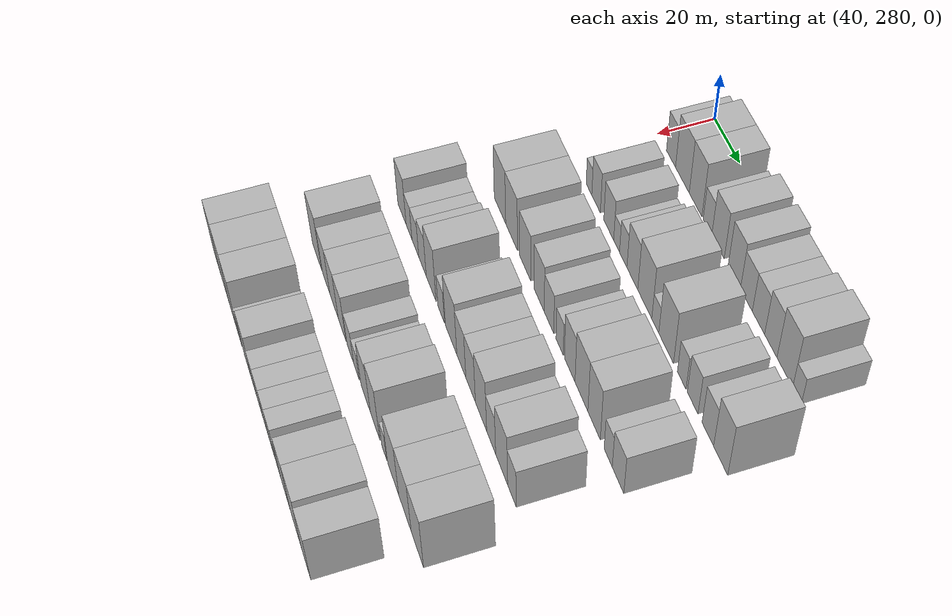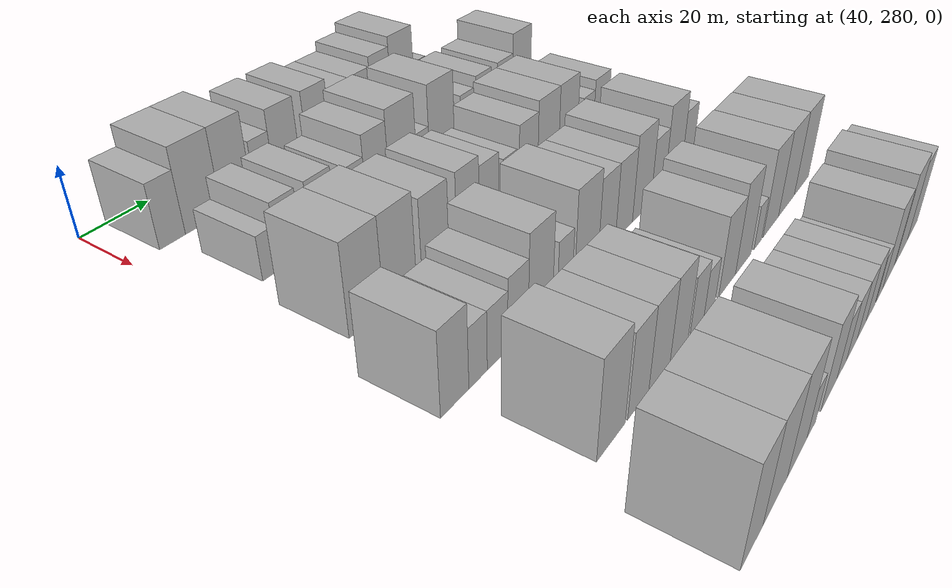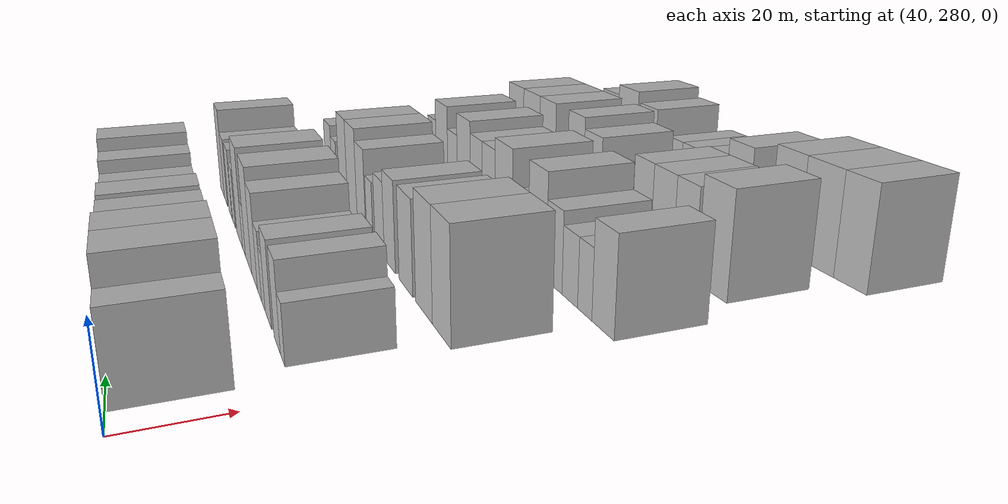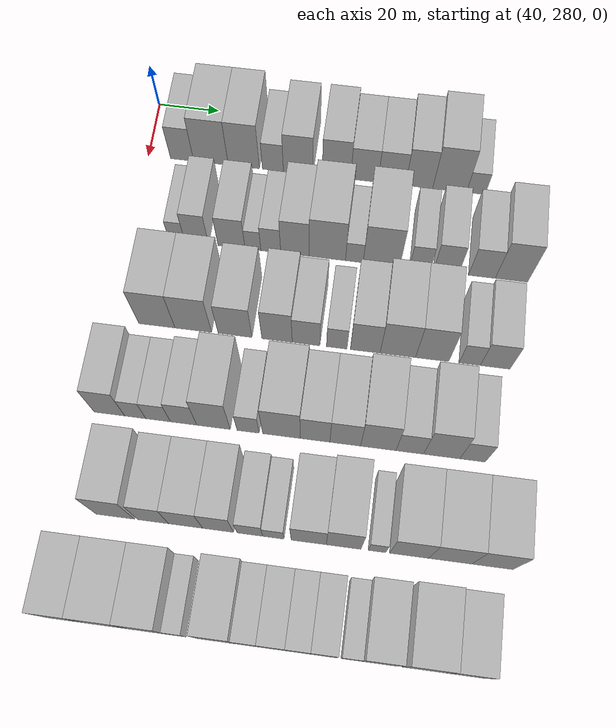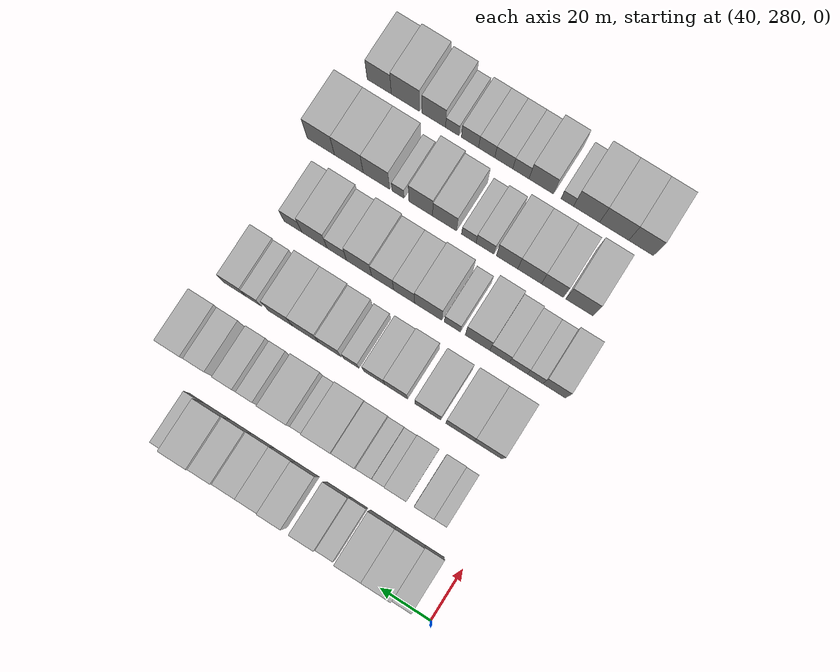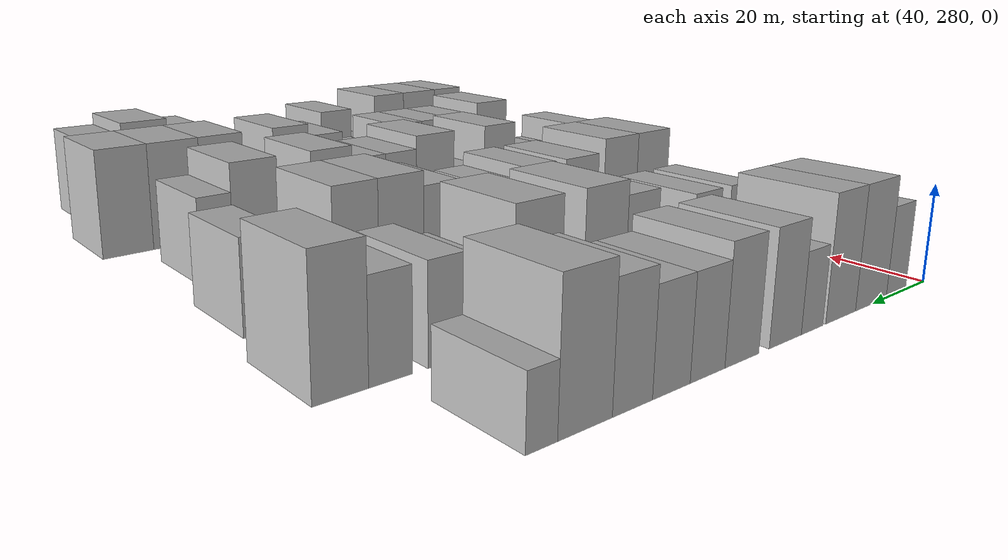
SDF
<sdf version="1.6">
 <world name="default">
  <model name="building_75">
   <static>1</static>
   <pose>50.0000 291.2362 0 0.000000 0.000000 0.000000</pose>
   <link name="link">
    <pose>0 0 9.00 0 0 0</pose>
    <collision name="collision"><geometry><box><size>20.0000 7.6093 18.0000</size></box></geometry></collision>
    <visual name="visual">
     <cast_shadows>0</cast_shadows>
     <geometry><box><size>20.0000 7.6093 18.0000</size></box></geometry>
     <material>
      <script>
       <uri>model://HANNAS_wall/materials/scripts</uri>
       <uri>model://HANNAS_wall/materials/textures</uri>
       <name>vrc/HANNAS_wall</name>
      </script>
     </material>
    </visual>
   </link>
  </model>
  <model name="building_76">
   <static>1</static>
   <pose>50.0000 300.7104 0 0.000000 0.000000 0.000000</pose>
   <link name="link">
    <pose>0 0 12.00 0 0 0</pose>
    <collision name="collision"><geometry><box><size>20.0000 11.3392 24.0000</size></box></geometry></collision>
    <visual name="visual">
     <cast_shadows>0</cast_shadows>
     <geometry><box><size>20.0000 11.3392 24.0000</size></box></geometry>
     <material>
      <script>
       <uri>model://HANNAS_wall/materials/scripts</uri>
       <uri>model://HANNAS_wall/materials/textures</uri>
       <name>vrc/HANNAS_wall</name>
      </script>
     </material>
    </visual>
   </link>
  </model>
  <model name="building_77">
   <static>1</static>
   <pose>50.0000 311.4844 0 0.000000 0.000000 0.000000</pose>
   <link name="link">
    <pose>0 0 12.00 0 0 0</pose>
    <collision name="collision"><geometry><box><size>20.0000 10.2089 24.0000</size></box></geometry></collision>
    <visual name="visual">
     <cast_shadows>0</cast_shadows>
     <geometry><box><size>20.0000 10.2089 24.0000</size></box></geometry>
     <material>
      <script>
       <uri>model://HANNAS_wall/materials/scripts</uri>
       <uri>model://HANNAS_wall/materials/textures</uri>
       <name>vrc/HANNAS_wall</name>
      </script>
     </material>
    </visual>
   </link>
  </model>
  <model name="building_78">
   <static>1</static>
   <pose>50.0000 321.0028 0 0.000000 0.000000 0.000000</pose>
   <link name="link">
    <pose>0 0 7.50 0 0 0</pose>
    <collision name="collision"><geometry><box><size>20.0000 6.8279 15.0000</size></box></geometry></collision>
    <visual name="visual">
     <cast_shadows>0</cast_shadows>
     <geometry><box><size>20.0000 6.8279 15.0000</size></box></geometry>
     <material>
      <script>
       <uri>model://HANNAS_wall/materials/scripts</uri>
       <uri>model://HANNAS_wall/materials/textures</uri>
       <name>vrc/HANNAS_wall</name>
      </script>
     </material>
    </visual>
   </link>
  </model>
  <model name="building_79">
   <static>1</static>
   <pose>50.0000 329.2304 0 0.000000 0.000000 0.000000</pose>
   <link name="link">
    <pose>0 0 10.50 0 0 0</pose>
    <collision name="collision"><geometry><box><size>20.0000 9.6273 21.0000</size></box></geometry></collision>
    <visual name="visual">
     <cast_shadows>0</cast_shadows>
     <geometry><box><size>20.0000 9.6273 21.0000</size></box></geometry>
     <material>
      <script>
       <uri>model://HANNAS_wall/materials/scripts</uri>
       <uri>model://HANNAS_wall/materials/textures</uri>
       <name>vrc/HANNAS_wall</name>
      </script>
     </material>
    </visual>
   </link>
  </model>
  <model name="building_80">
   <static>1</static>
   <pose>50.0000 341.6687 0 0.000000 0.000000 0.000000</pose>
   <link name="link">
    <pose>0 0 10.50 0 0 0</pose>
    <collision name="collision"><geometry><box><size>20.0000 9.2493 21.0000</size></box></geometry></collision>
    <visual name="visual">
     <cast_shadows>0</cast_shadows>
     <geometry><box><size>20.0000 9.2493 21.0000</size></box></geometry>
     <material>
      <script>
       <uri>model://HANNAS_wall/materials/scripts</uri>
       <uri>model://HANNAS_wall/materials/textures</uri>
       <name>vrc/HANNAS_wall</name>
      </script>
     </material>
    </visual>
   </link>
  </model>
  <model name="building_81">
   <static>1</static>
   <pose>50.0000 350.6972 0 0.000000 0.000000 0.000000</pose>
   <link name="link">
    <pose>0 0 9.00 0 0 0</pose>
    <collision name="collision"><geometry><box><size>20.0000 8.8076 18.0000</size></box></geometry></collision>
    <visual name="visual">
     <cast_shadows>0</cast_shadows>
     <geometry><box><size>20.0000 8.8076 18.0000</size></box></geometry>
     <material>
      <script>
       <uri>model://HANNAS_wall/materials/scripts</uri>
       <uri>model://HANNAS_wall/materials/textures</uri>
       <name>vrc/HANNAS_wall</name>
      </script>
     </material>
    </visual>
   </link>
  </model>
  <model name="building_82">
   <static>1</static>
   <pose>50.0000 359.5367 0 0.000000 0.000000 0.000000</pose>
   <link name="link">
    <pose>0 0 9.00 0 0 0</pose>
    <collision name="collision"><geometry><box><size>20.0000 8.8714 18.0000</size></box></geometry></collision>
    <visual name="visual">
     <cast_shadows>0</cast_shadows>
     <geometry><box><size>20.0000 8.8714 18.0000</size></box></geometry>
     <material>
      <script>
       <uri>model://HANNAS_wall/materials/scripts</uri>
       <uri>model://HANNAS_wall/materials/textures</uri>
       <name>vrc/HANNAS_wall</name>
      </script>
     </material>
    </visual>
   </link>
  </model>
  <model name="building_83">
   <static>1</static>
   <pose>50.0000 368.3480 0 0.000000 0.000000 0.000000</pose>
   <link name="link">
    <pose>0 0 10.50 0 0 0</pose>
    <collision name="collision"><geometry><box><size>20.0000 8.7513 21.0000</size></box></geometry></collision>
    <visual name="visual">
     <cast_shadows>0</cast_shadows>
     <geometry><box><size>20.0000 8.7513 21.0000</size></box></geometry>
     <material>
      <script>
       <uri>model://HANNAS_wall/materials/scripts</uri>
       <uri>model://HANNAS_wall/materials/textures</uri>
       <name>vrc/HANNAS_wall</name>
      </script>
     </material>
    </visual>
   </link>
  </model>
  <model name="building_84">
   <static>1</static>
   <pose>50.0000 378.1761 0 0.000000 0.000000 0.000000</pose>
   <link name="link">
    <pose>0 0 12.00 0 0 0</pose>
    <collision name="collision"><geometry><box><size>20.0000 10.9050 24.0000</size></box></geometry></collision>
    <visual name="visual">
     <cast_shadows>0</cast_shadows>
     <geometry><box><size>20.0000 10.9050 24.0000</size></box></geometry>
     <material>
      <script>
       <uri>model://HANNAS_wall/materials/scripts</uri>
       <uri>model://HANNAS_wall/materials/textures</uri>
       <name>vrc/HANNAS_wall</name>
      </script>
     </material>
    </visual>
   </link>
  </model>
  <model name="building_85">
   <static>1</static>
   <pose>50.0000 386.6057 0 0.000000 0.000000 0.000000</pose>
   <link name="link">
    <pose>0 0 6.00 0 0 0</pose>
    <collision name="collision"><geometry><box><size>20.0000 5.9542 12.0000</size></box></geometry></collision>
    <visual name="visual">
     <cast_shadows>0</cast_shadows>
     <geometry><box><size>20.0000 5.9542 12.0000</size></box></geometry>
     <material>
      <script>
       <uri>model://HANNAS_wall/materials/scripts</uri>
       <uri>model://HANNAS_wall/materials/textures</uri>
       <name>vrc/HANNAS_wall</name>
      </script>
     </material>
    </visual>
   </link>
  </model>
  <model name="building_186">
   <static>1</static>
   <pose>79.0000 294.8105 0 0.000000 0.000000 0.000000</pose>
   <link name="link">
    <pose>0 0 6.00 0 0 0</pose>
    <collision name="collision"><geometry><box><size>20.0000 5.0471 12.0000</size></box></geometry></collision>
    <visual name="visual">
     <cast_shadows>0</cast_shadows>
     <geometry><box><size>20.0000 5.0471 12.0000</size></box></geometry>
     <material>
      <script>
       <uri>model://HANNAS_wall/materials/scripts</uri>
       <uri>model://HANNAS_wall/materials/textures</uri>
       <name>vrc/HANNAS_wall</name>
      </script>
     </material>
    </visual>
   </link>
  </model>
  <model name="building_187">
   <static>1</static>
   <pose>79.0000 301.1173 0 0.000000 0.000000 0.000000</pose>
   <link name="link">
    <pose>0 0 9.00 0 0 0</pose>
    <collision name="collision"><geometry><box><size>20.0000 7.5666 18.0000</size></box></geometry></collision>
    <visual name="visual">
     <cast_shadows>0</cast_shadows>
     <geometry><box><size>20.0000 7.5666 18.0000</size></box></geometry>
     <material>
      <script>
       <uri>model://HANNAS_wall/materials/scripts</uri>
       <uri>model://HANNAS_wall/materials/textures</uri>
       <name>vrc/HANNAS_wall</name>
      </script>
     </material>
    </visual>
   </link>
  </model>
  <model name="building_188">
   <static>1</static>
   <pose>79.0000 312.1807 0 0.000000 0.000000 0.000000</pose>
   <link name="link">
    <pose>0 0 9.00 0 0 0</pose>
    <collision name="collision"><geometry><box><size>20.0000 8.5602 18.0000</size></box></geometry></collision>
    <visual name="visual">
     <cast_shadows>0</cast_shadows>
     <geometry><box><size>20.0000 8.5602 18.0000</size></box></geometry>
     <material>
      <script>
       <uri>model://HANNAS_wall/materials/scripts</uri>
       <uri>model://HANNAS_wall/materials/textures</uri>
       <name>vrc/HANNAS_wall</name>
      </script>
     </material>
    </visual>
   </link>
  </model>
  <model name="building_189">
   <static>1</static>
   <pose>79.0000 318.9475 0 0.000000 0.000000 0.000000</pose>
   <link name="link">
    <pose>0 0 6.00 0 0 0</pose>
    <collision name="collision"><geometry><box><size>20.0000 4.9733 12.0000</size></box></geometry></collision>
    <visual name="visual">
     <cast_shadows>0</cast_shadows>
     <geometry><box><size>20.0000 4.9733 12.0000</size></box></geometry>
     <material>
      <script>
       <uri>model://HANNAS_wall/materials/scripts</uri>
       <uri>model://HANNAS_wall/materials/textures</uri>
       <name>vrc/HANNAS_wall</name>
      </script>
     </material>
    </visual>
   </link>
  </model>
  <model name="building_190">
   <static>1</static>
   <pose>79.0000 324.5527 0 0.000000 0.000000 0.000000</pose>
   <link name="link">
    <pose>0 0 7.50 0 0 0</pose>
    <collision name="collision"><geometry><box><size>20.0000 6.2372 15.0000</size></box></geometry></collision>
    <visual name="visual">
     <cast_shadows>0</cast_shadows>
     <geometry><box><size>20.0000 6.2372 15.0000</size></box></geometry>
     <material>
      <script>
       <uri>model://HANNAS_wall/materials/scripts</uri>
       <uri>model://HANNAS_wall/materials/textures</uri>
       <name>vrc/HANNAS_wall</name>
      </script>
     </material>
    </visual>
   </link>
  </model>
  <model name="building_191">
   <static>1</static>
   <pose>79.0000 332.1531 0 0.000000 0.000000 0.000000</pose>
   <link name="link">
    <pose>0 0 10.50 0 0 0</pose>
    <collision name="collision"><geometry><box><size>20.0000 8.9636 21.0000</size></box></geometry></collision>
    <visual name="visual">
     <cast_shadows>0</cast_shadows>
     <geometry><box><size>20.0000 8.9636 21.0000</size></box></geometry>
     <material>
      <script>
       <uri>model://HANNAS_wall/materials/scripts</uri>
       <uri>model://HANNAS_wall/materials/textures</uri>
       <name>vrc/HANNAS_wall</name>
      </script>
     </material>
    </visual>
   </link>
  </model>
  <model name="building_192">
   <static>1</static>
   <pose>79.0000 342.3067 0 0.000000 0.000000 0.000000</pose>
   <link name="link">
    <pose>0 0 12.00 0 0 0</pose>
    <collision name="collision"><geometry><box><size>20.0000 11.3435 24.0000</size></box></geometry></collision>
    <visual name="visual">
     <cast_shadows>0</cast_shadows>
     <geometry><box><size>20.0000 11.3435 24.0000</size></box></geometry>
     <material>
      <script>
       <uri>model://HANNAS_wall/materials/scripts</uri>
       <uri>model://HANNAS_wall/materials/textures</uri>
       <name>vrc/HANNAS_wall</name>
      </script>
     </material>
    </visual>
   </link>
  </model>
  <model name="building_193">
   <static>1</static>
   <pose>79.0000 350.7364 0 0.000000 0.000000 0.000000</pose>
   <link name="link">
    <pose>0 0 6.00 0 0 0</pose>
    <collision name="collision"><geometry><box><size>20.0000 5.5160 12.0000</size></box></geometry></collision>
    <visual name="visual">
     <cast_shadows>0</cast_shadows>
     <geometry><box><size>20.0000 5.5160 12.0000</size></box></geometry>
     <material>
      <script>
       <uri>model://HANNAS_wall/materials/scripts</uri>
       <uri>model://HANNAS_wall/materials/textures</uri>
       <name>vrc/HANNAS_wall</name>
      </script>
     </material>
    </visual>
   </link>
  </model>
  <model name="building_194">
   <static>1</static>
   <pose>79.0000 359.1980 0 0.000000 0.000000 0.000000</pose>
   <link name="link">
    <pose>0 0 12.00 0 0 0</pose>
    <collision name="collision"><geometry><box><size>20.0000 11.4072 24.0000</size></box></geometry></collision>
    <visual name="visual">
     <cast_shadows>0</cast_shadows>
     <geometry><box><size>20.0000 11.4072 24.0000</size></box></geometry>
     <material>
      <script>
       <uri>model://HANNAS_wall/materials/scripts</uri>
       <uri>model://HANNAS_wall/materials/textures</uri>
       <name>vrc/HANNAS_wall</name>
      </script>
     </material>
    </visual>
   </link>
  </model>
  <model name="building_195">
   <static>1</static>
   <pose>79.0000 371.1357 0 0.000000 0.000000 0.000000</pose>
   <link name="link">
    <pose>0 0 7.50 0 0 0</pose>
    <collision name="collision"><geometry><box><size>20.0000 6.4683 15.0000</size></box></geometry></collision>
    <visual name="visual">
     <cast_shadows>0</cast_shadows>
     <geometry><box><size>20.0000 6.4683 15.0000</size></box></geometry>
     <material>
      <script>
       <uri>model://HANNAS_wall/materials/scripts</uri>
       <uri>model://HANNAS_wall/materials/textures</uri>
       <name>vrc/HANNAS_wall</name>
      </script>
     </material>
    </visual>
   </link>
  </model>
  <model name="building_196">
   <static>1</static>
   <pose>79.0000 379.2904 0 0.000000 0.000000 0.000000</pose>
   <link name="link">
    <pose>0 0 9.00 0 0 0</pose>
    <collision name="collision"><geometry><box><size>20.0000 7.8410 18.0000</size></box></geometry></collision>
    <visual name="visual">
     <cast_shadows>0</cast_shadows>
     <geometry><box><size>20.0000 7.8410 18.0000</size></box></geometry>
     <material>
      <script>
       <uri>model://HANNAS_wall/materials/scripts</uri>
       <uri>model://HANNAS_wall/materials/textures</uri>
       <name>vrc/HANNAS_wall</name>
      </script>
     </material>
    </visual>
   </link>
  </model>
  <model name="building_197">
   <static>1</static>
   <pose>79.0000 390.3539 0 0.000000 0.000000 0.000000</pose>
   <link name="link">
    <pose>0 0 9.00 0 0 0</pose>
    <collision name="collision"><geometry><box><size>20.0000 8.2859 18.0000</size></box></geometry></collision>
    <visual name="visual">
     <cast_shadows>0</cast_shadows>
     <geometry><box><size>20.0000 8.2859 18.0000</size></box></geometry>
     <material>
      <script>
       <uri>model://HANNAS_wall/materials/scripts</uri>
       <uri>model://HANNAS_wall/materials/textures</uri>
       <name>vrc/HANNAS_wall</name>
      </script>
     </material>
    </visual>
   </link>
  </model>
  <model name="building_198">
   <static>1</static>
   <pose>79.0000 399.4742 0 0.000000 0.000000 0.000000</pose>
   <link name="link">
    <pose>0 0 12.00 0 0 0</pose>
    <collision name="collision"><geometry><box><size>20.0000 9.9546 24.0000</size></box></geometry></collision>
    <visual name="visual">
     <cast_shadows>0</cast_shadows>
     <geometry><box><size>20.0000 9.9546 24.0000</size></box></geometry>
     <material>
      <script>
       <uri>model://HANNAS_wall/materials/scripts</uri>
       <uri>model://HANNAS_wall/materials/textures</uri>
       <name>vrc/HANNAS_wall</name>
      </script>
     </material>
    </visual>
   </link>
  </model>
  <model name="building_299">
   <static>1</static>
   <pose>108.0000 293.9912 0 0.000000 0.000000 0.000000</pose>
   <link name="link">
    <pose>0 0 12.00 0 0 0</pose>
    <collision name="collision"><geometry><box><size>20.0000 11.1549 24.0000</size></box></geometry></collision>
    <visual name="visual">
     <cast_shadows>0</cast_shadows>
     <geometry><box><size>20.0000 11.1549 24.0000</size></box></geometry>
     <material>
      <script>
       <uri>model://HANNAS_wall/materials/scripts</uri>
       <uri>model://HANNAS_wall/materials/textures</uri>
       <name>vrc/HANNAS_wall</name>
      </script>
     </material>
    </visual>
   </link>
  </model>
  <model name="building_300">
   <static>1</static>
   <pose>108.0000 305.1686 0 0.000000 0.000000 0.000000</pose>
   <link name="link">
    <pose>0 0 12.00 0 0 0</pose>
    <collision name="collision"><geometry><box><size>20.0000 11.1999 24.0000</size></box></geometry></collision>
    <visual name="visual">
     <cast_shadows>0</cast_shadows>
     <geometry><box><size>20.0000 11.1999 24.0000</size></box></geometry>
     <material>
      <script>
       <uri>model://HANNAS_wall/materials/scripts</uri>
       <uri>model://HANNAS_wall/materials/textures</uri>
       <name>vrc/HANNAS_wall</name>
      </script>
     </material>
    </visual>
   </link>
  </model>
  <model name="building_301">
   <static>1</static>
   <pose>108.0000 317.9205 0 0.000000 0.000000 0.000000</pose>
   <link name="link">
    <pose>0 0 10.50 0 0 0</pose>
    <collision name="collision"><geometry><box><size>20.0000 10.3039 21.0000</size></box></geometry></collision>
    <visual name="visual">
     <cast_shadows>0</cast_shadows>
     <geometry><box><size>20.0000 10.3039 21.0000</size></box></geometry>
     <material>
      <script>
       <uri>model://HANNAS_wall/materials/scripts</uri>
       <uri>model://HANNAS_wall/materials/textures</uri>
       <name>vrc/HANNAS_wall</name>
      </script>
     </material>
    </visual>
   </link>
  </model>
  <model name="building_302">
   <static>1</static>
   <pose>108.0000 330.6728 0 0.000000 0.000000 0.000000</pose>
   <link name="link">
    <pose>0 0 10.50 0 0 0</pose>
    <collision name="collision"><geometry><box><size>20.0000 9.2007 21.0000</size></box></geometry></collision>
    <visual name="visual">
     <cast_shadows>0</cast_shadows>
     <geometry><box><size>20.0000 9.2007 21.0000</size></box></geometry>
     <material>
      <script>
       <uri>model://HANNAS_wall/materials/scripts</uri>
       <uri>model://HANNAS_wall/materials/textures</uri>
       <name>vrc/HANNAS_wall</name>
      </script>
     </material>
    </visual>
   </link>
  </model>
  <model name="building_303">
   <static>1</static>
   <pose>108.0000 339.4499 0 0.000000 0.000000 0.000000</pose>
   <link name="link">
    <pose>0 0 9.00 0 0 0</pose>
    <collision name="collision"><geometry><box><size>20.0000 8.3534 18.0000</size></box></geometry></collision>
    <visual name="visual">
     <cast_shadows>0</cast_shadows>
     <geometry><box><size>20.0000 8.3534 18.0000</size></box></geometry>
     <material>
      <script>
       <uri>model://HANNAS_wall/materials/scripts</uri>
       <uri>model://HANNAS_wall/materials/textures</uri>
       <name>vrc/HANNAS_wall</name>
      </script>
     </material>
    </visual>
   </link>
  </model>
  <model name="building_304">
   <static>1</static>
   <pose>108.0000 348.7264 0 0.000000 0.000000 0.000000</pose>
   <link name="link">
    <pose>0 0 7.50 0 0 0</pose>
    <collision name="collision"><geometry><box><size>20.0000 6.1996 15.0000</size></box></geometry></collision>
    <visual name="visual">
     <cast_shadows>0</cast_shadows>
     <geometry><box><size>20.0000 6.1996 15.0000</size></box></geometry>
     <material>
      <script>
       <uri>model://HANNAS_wall/materials/scripts</uri>
       <uri>model://HANNAS_wall/materials/textures</uri>
       <name>vrc/HANNAS_wall</name>
      </script>
     </material>
    </visual>
   </link>
  </model>
  <model name="building_305">
   <static>1</static>
   <pose>108.0000 357.2896 0 0.000000 0.000000 0.000000</pose>
   <link name="link">
    <pose>0 0 10.50 0 0 0</pose>
    <collision name="collision"><geometry><box><size>20.0000 8.9268 21.0000</size></box></geometry></collision>
    <visual name="visual">
     <cast_shadows>0</cast_shadows>
     <geometry><box><size>20.0000 8.9268 21.0000</size></box></geometry>
     <material>
      <script>
       <uri>model://HANNAS_wall/materials/scripts</uri>
       <uri>model://HANNAS_wall/materials/textures</uri>
       <name>vrc/HANNAS_wall</name>
      </script>
     </material>
    </visual>
   </link>
  </model>
  <model name="building_306">
   <static>1</static>
   <pose>108.0000 367.0669 0 0.000000 0.000000 0.000000</pose>
   <link name="link">
    <pose>0 0 12.00 0 0 0</pose>
    <collision name="collision"><geometry><box><size>20.0000 10.6279 24.0000</size></box></geometry></collision>
    <visual name="visual">
     <cast_shadows>0</cast_shadows>
     <geometry><box><size>20.0000 10.6279 24.0000</size></box></geometry>
     <material>
      <script>
       <uri>model://HANNAS_wall/materials/scripts</uri>
       <uri>model://HANNAS_wall/materials/textures</uri>
       <name>vrc/HANNAS_wall</name>
      </script>
     </material>
    </visual>
   </link>
  </model>
  <model name="building_307">
   <static>1</static>
   <pose>108.0000 377.3647 0 0.000000 0.000000 0.000000</pose>
   <link name="link">
    <pose>0 0 12.00 0 0 0</pose>
    <collision name="collision"><geometry><box><size>20.0000 9.9675 24.0000</size></box></geometry></collision>
    <visual name="visual">
     <cast_shadows>0</cast_shadows>
     <geometry><box><size>20.0000 9.9675 24.0000</size></box></geometry>
     <material>
      <script>
       <uri>model://HANNAS_wall/materials/scripts</uri>
       <uri>model://HANNAS_wall/materials/textures</uri>
       <name>vrc/HANNAS_wall</name>
      </script>
     </material>
    </visual>
   </link>
  </model>
  <model name="building_308">
   <static>1</static>
   <pose>108.0000 388.5274 0 0.000000 0.000000 0.000000</pose>
   <link name="link">
    <pose>0 0 7.50 0 0 0</pose>
    <collision name="collision"><geometry><box><size>20.0000 6.3580 15.0000</size></box></geometry></collision>
    <visual name="visual">
     <cast_shadows>0</cast_shadows>
     <geometry><box><size>20.0000 6.3580 15.0000</size></box></geometry>
     <material>
      <script>
       <uri>model://HANNAS_wall/materials/scripts</uri>
       <uri>model://HANNAS_wall/materials/textures</uri>
       <name>vrc/HANNAS_wall</name>
      </script>
     </material>
    </visual>
   </link>
  </model>
  <model name="building_309">
   <static>1</static>
   <pose>108.0000 396.1273 0 0.000000 0.000000 0.000000</pose>
   <link name="link">
    <pose>0 0 9.00 0 0 0</pose>
    <collision name="collision"><geometry><box><size>20.0000 8.8417 18.0000</size></box></geometry></collision>
    <visual name="visual">
     <cast_shadows>0</cast_shadows>
     <geometry><box><size>20.0000 8.8417 18.0000</size></box></geometry>
     <material>
      <script>
       <uri>model://HANNAS_wall/materials/scripts</uri>
       <uri>model://HANNAS_wall/materials/textures</uri>
       <name>vrc/HANNAS_wall</name>
      </script>
     </material>
    </visual>
   </link>
  </model>
  <model name="building_411">
   <static>1</static>
   <pose>137.0000 285.5446 0 0.000000 0.000000 0.000000</pose>
   <link name="link">
    <pose>0 0 10.50 0 0 0</pose>
    <collision name="collision"><geometry><box><size>20.0000 9.0649 21.0000</size></box></geometry></collision>
    <visual name="visual">
     <cast_shadows>0</cast_shadows>
     <geometry><box><size>20.0000 9.0649 21.0000</size></box></geometry>
     <material>
      <script>
       <uri>model://HANNAS_wall/materials/scripts</uri>
       <uri>model://HANNAS_wall/materials/textures</uri>
       <name>vrc/HANNAS_wall</name>
      </script>
     </material>
    </visual>
   </link>
  </model>
  <model name="building_412">
   <static>1</static>
   <pose>137.0000 293.1884 0 0.000000 0.000000 0.000000</pose>
   <link name="link">
    <pose>0 0 7.50 0 0 0</pose>
    <collision name="collision"><geometry><box><size>20.0000 6.2228 15.0000</size></box></geometry></collision>
    <visual name="visual">
     <cast_shadows>0</cast_shadows>
     <geometry><box><size>20.0000 6.2228 15.0000</size></box></geometry>
     <material>
      <script>
       <uri>model://HANNAS_wall/materials/scripts</uri>
       <uri>model://HANNAS_wall/materials/textures</uri>
       <name>vrc/HANNAS_wall</name>
      </script>
     </material>
    </visual>
   </link>
  </model>
  <model name="building_413">
   <static>1</static>
   <pose>137.0000 299.9285 0 0.000000 0.000000 0.000000</pose>
   <link name="link">
    <pose>0 0 7.50 0 0 0</pose>
    <collision name="collision"><geometry><box><size>20.0000 7.2575 15.0000</size></box></geometry></collision>
    <visual name="visual">
     <cast_shadows>0</cast_shadows>
     <geometry><box><size>20.0000 7.2575 15.0000</size></box></geometry>
     <material>
      <script>
       <uri>model://HANNAS_wall/materials/scripts</uri>
       <uri>model://HANNAS_wall/materials/textures</uri>
       <name>vrc/HANNAS_wall</name>
      </script>
     </material>
    </visual>
   </link>
  </model>
  <model name="building_414">
   <static>1</static>
   <pose>137.0000 307.4364 0 0.000000 0.000000 0.000000</pose>
   <link name="link">
    <pose>0 0 9.00 0 0 0</pose>
    <collision name="collision"><geometry><box><size>20.0000 7.7582 18.0000</size></box></geometry></collision>
    <visual name="visual">
     <cast_shadows>0</cast_shadows>
     <geometry><box><size>20.0000 7.7582 18.0000</size></box></geometry>
     <material>
      <script>
       <uri>model://HANNAS_wall/materials/scripts</uri>
       <uri>model://HANNAS_wall/materials/textures</uri>
       <name>vrc/HANNAS_wall</name>
      </script>
     </material>
    </visual>
   </link>
  </model>
  <model name="building_415">
   <static>1</static>
   <pose>137.0000 316.2455 0 0.000000 0.000000 0.000000</pose>
   <link name="link">
    <pose>0 0 12.00 0 0 0</pose>
    <collision name="collision"><geometry><box><size>20.0000 9.8602 24.0000</size></box></geometry></collision>
    <visual name="visual">
     <cast_shadows>0</cast_shadows>
     <geometry><box><size>20.0000 9.8602 24.0000</size></box></geometry>
     <material>
      <script>
       <uri>model://HANNAS_wall/materials/scripts</uri>
       <uri>model://HANNAS_wall/materials/textures</uri>
       <name>vrc/HANNAS_wall</name>
      </script>
     </material>
    </visual>
   </link>
  </model>
  <model name="building_416">
   <static>1</static>
   <pose>137.0000 326.4112 0 0.000000 0.000000 0.000000</pose>
   <link name="link">
    <pose>0 0 7.50 0 0 0</pose>
    <collision name="collision"><geometry><box><size>20.0000 6.4711 15.0000</size></box></geometry></collision>
    <visual name="visual">
     <cast_shadows>0</cast_shadows>
     <geometry><box><size>20.0000 6.4711 15.0000</size></box></geometry>
     <material>
      <script>
       <uri>model://HANNAS_wall/materials/scripts</uri>
       <uri>model://HANNAS_wall/materials/textures</uri>
       <name>vrc/HANNAS_wall</name>
      </script>
     </material>
    </visual>
   </link>
  </model>
  <model name="building_417">
   <static>1</static>
   <pose>137.0000 336.1549 0 0.000000 0.000000 0.000000</pose>
   <link name="link">
    <pose>0 0 12.00 0 0 0</pose>
    <collision name="collision"><geometry><box><size>20.0000 11.0164 24.0000</size></box></geometry></collision>
    <visual name="visual">
     <cast_shadows>0</cast_shadows>
     <geometry><box><size>20.0000 11.0164 24.0000</size></box></geometry>
     <material>
      <script>
       <uri>model://HANNAS_wall/materials/scripts</uri>
       <uri>model://HANNAS_wall/materials/textures</uri>
       <name>vrc/HANNAS_wall</name>
      </script>
     </material>
    </visual>
   </link>
  </model>
  <model name="building_418">
   <static>1</static>
   <pose>137.0000 345.9392 0 0.000000 0.000000 0.000000</pose>
   <link name="link">
    <pose>0 0 10.50 0 0 0</pose>
    <collision name="collision"><geometry><box><size>20.0000 8.5522 21.0000</size></box></geometry></collision>
    <visual name="visual">
     <cast_shadows>0</cast_shadows>
     <geometry><box><size>20.0000 8.5522 21.0000</size></box></geometry>
     <material>
      <script>
       <uri>model://HANNAS_wall/materials/scripts</uri>
       <uri>model://HANNAS_wall/materials/textures</uri>
       <name>vrc/HANNAS_wall</name>
      </script>
     </material>
    </visual>
   </link>
  </model>
  <model name="building_419">
   <static>1</static>
   <pose>137.0000 354.6650 0 0.000000 0.000000 0.000000</pose>
   <link name="link">
    <pose>0 0 10.50 0 0 0</pose>
    <collision name="collision"><geometry><box><size>20.0000 8.8993 21.0000</size></box></geometry></collision>
    <visual name="visual">
     <cast_shadows>0</cast_shadows>
     <geometry><box><size>20.0000 8.8993 21.0000</size></box></geometry>
     <material>
      <script>
       <uri>model://HANNAS_wall/materials/scripts</uri>
       <uri>model://HANNAS_wall/materials/textures</uri>
       <name>vrc/HANNAS_wall</name>
      </script>
     </material>
    </visual>
   </link>
  </model>
  <model name="building_420">
   <static>1</static>
   <pose>137.0000 364.2228 0 0.000000 0.000000 0.000000</pose>
   <link name="link">
    <pose>0 0 12.00 0 0 0</pose>
    <collision name="collision"><geometry><box><size>20.0000 10.2164 24.0000</size></box></geometry></collision>
    <visual name="visual">
     <cast_shadows>0</cast_shadows>
     <geometry><box><size>20.0000 10.2164 24.0000</size></box></geometry>
     <material>
      <script>
       <uri>model://HANNAS_wall/materials/scripts</uri>
       <uri>model://HANNAS_wall/materials/textures</uri>
       <name>vrc/HANNAS_wall</name>
      </script>
     </material>
    </visual>
   </link>
  </model>
  <model name="building_421">
   <static>1</static>
   <pose>137.0000 373.3149 0 0.000000 0.000000 0.000000</pose>
   <link name="link">
    <pose>0 0 9.00 0 0 0</pose>
    <collision name="collision"><geometry><box><size>20.0000 7.9679 18.0000</size></box></geometry></collision>
    <visual name="visual">
     <cast_shadows>0</cast_shadows>
     <geometry><box><size>20.0000 7.9679 18.0000</size></box></geometry>
     <material>
      <script>
       <uri>model://HANNAS_wall/materials/scripts</uri>
       <uri>model://HANNAS_wall/materials/textures</uri>
       <name>vrc/HANNAS_wall</name>
      </script>
     </material>
    </visual>
   </link>
  </model>
  <model name="building_422">
   <static>1</static>
   <pose>137.0000 382.5162 0 0.000000 0.000000 0.000000</pose>
   <link name="link">
    <pose>0 0 12.00 0 0 0</pose>
    <collision name="collision"><geometry><box><size>20.0000 10.4345 24.0000</size></box></geometry></collision>
    <visual name="visual">
     <cast_shadows>0</cast_shadows>
     <geometry><box><size>20.0000 10.4345 24.0000</size></box></geometry>
     <material>
      <script>
       <uri>model://HANNAS_wall/materials/scripts</uri>
       <uri>model://HANNAS_wall/materials/textures</uri>
       <name>vrc/HANNAS_wall</name>
      </script>
     </material>
    </visual>
   </link>
  </model>
  <model name="building_423">
   <static>1</static>
   <pose>137.0000 391.3852 0 0.000000 0.000000 0.000000</pose>
   <link name="link">
    <pose>0 0 9.00 0 0 0</pose>
    <collision name="collision"><geometry><box><size>20.0000 7.3036 18.0000</size></box></geometry></collision>
    <visual name="visual">
     <cast_shadows>0</cast_shadows>
     <geometry><box><size>20.0000 7.3036 18.0000</size></box></geometry>
     <material>
      <script>
       <uri>model://HANNAS_wall/materials/scripts</uri>
       <uri>model://HANNAS_wall/materials/textures</uri>
       <name>vrc/HANNAS_wall</name>
      </script>
     </material>
    </visual>
   </link>
  </model>
  <model name="building_527">
   <static>1</static>
   <pose>166.0000 293.2646 0 0.000000 0.000000 0.000000</pose>
   <link name="link">
    <pose>0 0 12.00 0 0 0</pose>
    <collision name="collision"><geometry><box><size>20.0000 10.8808 24.0000</size></box></geometry></collision>
    <visual name="visual">
     <cast_shadows>0</cast_shadows>
     <geometry><box><size>20.0000 10.8808 24.0000</size></box></geometry>
     <material>
      <script>
       <uri>model://HANNAS_wall/materials/scripts</uri>
       <uri>model://HANNAS_wall/materials/textures</uri>
       <name>vrc/HANNAS_wall</name>
      </script>
     </material>
    </visual>
   </link>
  </model>
  <model name="building_528">
   <static>1</static>
   <pose>166.0000 304.1193 0 0.000000 0.000000 0.000000</pose>
   <link name="link">
    <pose>0 0 10.50 0 0 0</pose>
    <collision name="collision"><geometry><box><size>20.0000 8.8286 21.0000</size></box></geometry></collision>
    <visual name="visual">
     <cast_shadows>0</cast_shadows>
     <geometry><box><size>20.0000 8.8286 21.0000</size></box></geometry>
     <material>
      <script>
       <uri>model://HANNAS_wall/materials/scripts</uri>
       <uri>model://HANNAS_wall/materials/textures</uri>
       <name>vrc/HANNAS_wall</name>
      </script>
     </material>
    </visual>
   </link>
  </model>
  <model name="building_529">
   <static>1</static>
   <pose>166.0000 313.3295 0 0.000000 0.000000 0.000000</pose>
   <link name="link">
    <pose>0 0 10.50 0 0 0</pose>
    <collision name="collision"><geometry><box><size>20.0000 9.5918 21.0000</size></box></geometry></collision>
    <visual name="visual">
     <cast_shadows>0</cast_shadows>
     <geometry><box><size>20.0000 9.5918 21.0000</size></box></geometry>
     <material>
      <script>
       <uri>model://HANNAS_wall/materials/scripts</uri>
       <uri>model://HANNAS_wall/materials/textures</uri>
       <name>vrc/HANNAS_wall</name>
      </script>
     </material>
    </visual>
   </link>
  </model>
  <model name="building_530">
   <static>1</static>
   <pose>166.0000 322.4703 0 0.000000 0.000000 0.000000</pose>
   <link name="link">
    <pose>0 0 10.50 0 0 0</pose>
    <collision name="collision"><geometry><box><size>20.0000 8.6898 21.0000</size></box></geometry></collision>
    <visual name="visual">
     <cast_shadows>0</cast_shadows>
     <geometry><box><size>20.0000 8.6898 21.0000</size></box></geometry>
     <material>
      <script>
       <uri>model://HANNAS_wall/materials/scripts</uri>
       <uri>model://HANNAS_wall/materials/textures</uri>
       <name>vrc/HANNAS_wall</name>
      </script>
     </material>
    </visual>
   </link>
  </model>
  <model name="building_531">
   <static>1</static>
   <pose>166.0000 331.4240 0 0.000000 0.000000 0.000000</pose>
   <link name="link">
    <pose>0 0 7.50 0 0 0</pose>
    <collision name="collision"><geometry><box><size>20.0000 7.2176 15.0000</size></box></geometry></collision>
    <visual name="visual">
     <cast_shadows>0</cast_shadows>
     <geometry><box><size>20.0000 7.2176 15.0000</size></box></geometry>
     <material>
      <script>
       <uri>model://HANNAS_wall/materials/scripts</uri>
       <uri>model://HANNAS_wall/materials/textures</uri>
       <name>vrc/HANNAS_wall</name>
      </script>
     </material>
    </visual>
   </link>
  </model>
  <model name="building_532">
   <static>1</static>
   <pose>166.0000 337.9960 0 0.000000 0.000000 0.000000</pose>
   <link name="link">
    <pose>0 0 6.00 0 0 0</pose>
    <collision name="collision"><geometry><box><size>20.0000 5.9263 12.0000</size></box></geometry></collision>
    <visual name="visual">
     <cast_shadows>0</cast_shadows>
     <geometry><box><size>20.0000 5.9263 12.0000</size></box></geometry>
     <material>
      <script>
       <uri>model://HANNAS_wall/materials/scripts</uri>
       <uri>model://HANNAS_wall/materials/textures</uri>
       <name>vrc/HANNAS_wall</name>
      </script>
     </material>
    </visual>
   </link>
  </model>
  <model name="building_533">
   <static>1</static>
   <pose>166.0000 347.8611 0 0.000000 0.000000 0.000000</pose>
   <link name="link">
    <pose>0 0 10.50 0 0 0</pose>
    <collision name="collision"><geometry><box><size>20.0000 9.8038 21.0000</size></box></geometry></collision>
    <visual name="visual">
     <cast_shadows>0</cast_shadows>
     <geometry><box><size>20.0000 9.8038 21.0000</size></box></geometry>
     <material>
      <script>
       <uri>model://HANNAS_wall/materials/scripts</uri>
       <uri>model://HANNAS_wall/materials/textures</uri>
       <name>vrc/HANNAS_wall</name>
      </script>
     </material>
    </visual>
   </link>
  </model>
  <model name="building_534">
   <static>1</static>
   <pose>166.0000 357.5856 0 0.000000 0.000000 0.000000</pose>
   <link name="link">
    <pose>0 0 12.00 0 0 0</pose>
    <collision name="collision"><geometry><box><size>20.0000 9.6453 24.0000</size></box></geometry></collision>
    <visual name="visual">
     <cast_shadows>0</cast_shadows>
     <geometry><box><size>20.0000 9.6453 24.0000</size></box></geometry>
     <material>
      <script>
       <uri>model://HANNAS_wall/materials/scripts</uri>
       <uri>model://HANNAS_wall/materials/textures</uri>
       <name>vrc/HANNAS_wall</name>
      </script>
     </material>
    </visual>
   </link>
  </model>
  <model name="building_535">
   <static>1</static>
   <pose>166.0000 366.8777 0 0.000000 0.000000 0.000000</pose>
   <link name="link">
    <pose>0 0 6.00 0 0 0</pose>
    <collision name="collision"><geometry><box><size>20.0000 4.9388 12.0000</size></box></geometry></collision>
    <visual name="visual">
     <cast_shadows>0</cast_shadows>
     <geometry><box><size>20.0000 4.9388 12.0000</size></box></geometry>
     <material>
      <script>
       <uri>model://HANNAS_wall/materials/scripts</uri>
       <uri>model://HANNAS_wall/materials/textures</uri>
       <name>vrc/HANNAS_wall</name>
      </script>
     </material>
    </visual>
   </link>
  </model>
  <model name="building_536">
   <static>1</static>
   <pose>166.0000 375.7778 0 0.000000 0.000000 0.000000</pose>
   <link name="link">
    <pose>0 0 12.00 0 0 0</pose>
    <collision name="collision"><geometry><box><size>20.0000 10.8613 24.0000</size></box></geometry></collision>
    <visual name="visual">
     <cast_shadows>0</cast_shadows>
     <geometry><box><size>20.0000 10.8613 24.0000</size></box></geometry>
     <material>
      <script>
       <uri>model://HANNAS_wall/materials/scripts</uri>
       <uri>model://HANNAS_wall/materials/textures</uri>
       <name>vrc/HANNAS_wall</name>
      </script>
     </material>
    </visual>
   </link>
  </model>
  <model name="building_537">
   <static>1</static>
   <pose>166.0000 387.1450 0 0.000000 0.000000 0.000000</pose>
   <link name="link">
    <pose>0 0 12.00 0 0 0</pose>
    <collision name="collision"><geometry><box><size>20.0000 11.8733 24.0000</size></box></geometry></collision>
    <visual name="visual">
     <cast_shadows>0</cast_shadows>
     <geometry><box><size>20.0000 11.8733 24.0000</size></box></geometry>
     <material>
      <script>
       <uri>model://HANNAS_wall/materials/scripts</uri>
       <uri>model://HANNAS_wall/materials/textures</uri>
       <name>vrc/HANNAS_wall</name>
      </script>
     </material>
    </visual>
   </link>
  </model>
  <model name="building_538">
   <static>1</static>
   <pose>166.0000 398.7411 0 0.000000 0.000000 0.000000</pose>
   <link name="link">
    <pose>0 0 12.00 0 0 0</pose>
    <collision name="collision"><geometry><box><size>20.0000 11.3188 24.0000</size></box></geometry></collision>
    <visual name="visual">
     <cast_shadows>0</cast_shadows>
     <geometry><box><size>20.0000 11.3188 24.0000</size></box></geometry>
     <material>
      <script>
       <uri>model://HANNAS_wall/materials/scripts</uri>
       <uri>model://HANNAS_wall/materials/textures</uri>
       <name>vrc/HANNAS_wall</name>
      </script>
     </material>
    </visual>
   </link>
  </model>
  <model name="building_633">
   <static>1</static>
   <pose>195.0000 286.0648 0 0.000000 0.000000 0.000000</pose>
   <link name="link">
    <pose>0 0 12.00 0 0 0</pose>
    <collision name="collision"><geometry><box><size>20.0000 9.9782 24.0000</size></box></geometry></collision>
    <visual name="visual">
     <cast_shadows>0</cast_shadows>
     <geometry><box><size>20.0000 9.9782 24.0000</size></box></geometry>
     <material>
      <script>
       <uri>model://HANNAS_wall/materials/scripts</uri>
       <uri>model://HANNAS_wall/materials/textures</uri>
       <name>vrc/HANNAS_wall</name>
      </script>
     </material>
    </visual>
   </link>
  </model>
  <model name="building_634">
   <static>1</static>
   <pose>195.0000 296.9550 0 0.000000 0.000000 0.000000</pose>
   <link name="link">
    <pose>0 0 12.00 0 0 0</pose>
    <collision name="collision"><geometry><box><size>20.0000 11.8022 24.0000</size></box></geometry></collision>
    <visual name="visual">
     <cast_shadows>0</cast_shadows>
     <geometry><box><size>20.0000 11.8022 24.0000</size></box></geometry>
     <material>
      <script>
       <uri>model://HANNAS_wall/materials/scripts</uri>
       <uri>model://HANNAS_wall/materials/textures</uri>
       <name>vrc/HANNAS_wall</name>
      </script>
     </material>
    </visual>
   </link>
  </model>
  <model name="building_635">
   <static>1</static>
   <pose>195.0000 308.1335 0 0.000000 0.000000 0.000000</pose>
   <link name="link">
    <pose>0 0 12.00 0 0 0</pose>
    <collision name="collision"><geometry><box><size>20.0000 10.5549 24.0000</size></box></geometry></collision>
    <visual name="visual">
     <cast_shadows>0</cast_shadows>
     <geometry><box><size>20.0000 10.5549 24.0000</size></box></geometry>
     <material>
      <script>
       <uri>model://HANNAS_wall/materials/scripts</uri>
       <uri>model://HANNAS_wall/materials/textures</uri>
       <name>vrc/HANNAS_wall</name>
      </script>
     </material>
    </visual>
   </link>
  </model>
  <model name="building_636">
   <static>1</static>
   <pose>195.0000 315.9788 0 0.000000 0.000000 0.000000</pose>
   <link name="link">
    <pose>0 0 6.00 0 0 0</pose>
    <collision name="collision"><geometry><box><size>20.0000 5.1357 12.0000</size></box></geometry></collision>
    <visual name="visual">
     <cast_shadows>0</cast_shadows>
     <geometry><box><size>20.0000 5.1357 12.0000</size></box></geometry>
     <material>
      <script>
       <uri>model://HANNAS_wall/materials/scripts</uri>
       <uri>model://HANNAS_wall/materials/textures</uri>
       <name>vrc/HANNAS_wall</name>
      </script>
     </material>
    </visual>
   </link>
  </model>
  <model name="building_637">
   <static>1</static>
   <pose>195.0000 326.5426 0 0.000000 0.000000 0.000000</pose>
   <link name="link">
    <pose>0 0 10.50 0 0 0</pose>
    <collision name="collision"><geometry><box><size>20.0000 9.9919 21.0000</size></box></geometry></collision>
    <visual name="visual">
     <cast_shadows>0</cast_shadows>
     <geometry><box><size>20.0000 9.9919 21.0000</size></box></geometry>
     <material>
      <script>
       <uri>model://HANNAS_wall/materials/scripts</uri>
       <uri>model://HANNAS_wall/materials/textures</uri>
       <name>vrc/HANNAS_wall</name>
      </script>
     </material>
    </visual>
   </link>
  </model>
  <model name="building_638">
   <static>1</static>
   <pose>195.0000 334.8453 0 0.000000 0.000000 0.000000</pose>
   <link name="link">
    <pose>0 0 7.50 0 0 0</pose>
    <collision name="collision"><geometry><box><size>20.0000 6.6137 15.0000</size></box></geometry></collision>
    <visual name="visual">
     <cast_shadows>0</cast_shadows>
     <geometry><box><size>20.0000 6.6137 15.0000</size></box></geometry>
     <material>
      <script>
       <uri>model://HANNAS_wall/materials/scripts</uri>
       <uri>model://HANNAS_wall/materials/textures</uri>
       <name>vrc/HANNAS_wall</name>
      </script>
     </material>
    </visual>
   </link>
  </model>
  <model name="building_639">
   <static>1</static>
   <pose>195.0000 341.8510 0 0.000000 0.000000 0.000000</pose>
   <link name="link">
    <pose>0 0 7.50 0 0 0</pose>
    <collision name="collision"><geometry><box><size>20.0000 7.3976 15.0000</size></box></geometry></collision>
    <visual name="visual">
     <cast_shadows>0</cast_shadows>
     <geometry><box><size>20.0000 7.3976 15.0000</size></box></geometry>
     <material>
      <script>
       <uri>model://HANNAS_wall/materials/scripts</uri>
       <uri>model://HANNAS_wall/materials/textures</uri>
       <name>vrc/HANNAS_wall</name>
      </script>
     </material>
    </visual>
   </link>
  </model>
  <model name="building_640">
   <static>1</static>
   <pose>195.0000 348.8614 0 0.000000 0.000000 0.000000</pose>
   <link name="link">
    <pose>0 0 7.50 0 0 0</pose>
    <collision name="collision"><geometry><box><size>20.0000 6.6234 15.0000</size></box></geometry></collision>
    <visual name="visual">
     <cast_shadows>0</cast_shadows>
     <geometry><box><size>20.0000 6.6234 15.0000</size></box></geometry>
     <material>
      <script>
       <uri>model://HANNAS_wall/materials/scripts</uri>
       <uri>model://HANNAS_wall/materials/textures</uri>
       <name>vrc/HANNAS_wall</name>
      </script>
     </material>
    </visual>
   </link>
  </model>
  <model name="building_641">
   <static>1</static>
   <pose>195.0000 355.7208 0 0.000000 0.000000 0.000000</pose>
   <link name="link">
    <pose>0 0 7.50 0 0 0</pose>
    <collision name="collision"><geometry><box><size>20.0000 7.0953 15.0000</size></box></geometry></collision>
    <visual name="visual">
     <cast_shadows>0</cast_shadows>
     <geometry><box><size>20.0000 7.0953 15.0000</size></box></geometry>
     <material>
      <script>
       <uri>model://HANNAS_wall/materials/scripts</uri>
       <uri>model://HANNAS_wall/materials/textures</uri>
       <name>vrc/HANNAS_wall</name>
      </script>
     </material>
    </visual>
   </link>
  </model>
  <model name="building_642">
   <static>1</static>
   <pose>195.0000 363.0118 0 0.000000 0.000000 0.000000</pose>
   <link name="link">
    <pose>0 0 6.00 0 0 0</pose>
    <collision name="collision"><geometry><box><size>20.0000 5.4867 12.0000</size></box></geometry></collision>
    <visual name="visual">
     <cast_shadows>0</cast_shadows>
     <geometry><box><size>20.0000 5.4867 12.0000</size></box></geometry>
     <material>
      <script>
       <uri>model://HANNAS_wall/materials/scripts</uri>
       <uri>model://HANNAS_wall/materials/textures</uri>
       <name>vrc/HANNAS_wall</name>
      </script>
     </material>
    </visual>
   </link>
  </model>
  <model name="building_643">
   <static>1</static>
   <pose>195.0000 370.6568 0 0.000000 0.000000 0.000000</pose>
   <link name="link">
    <pose>0 0 10.50 0 0 0</pose>
    <collision name="collision"><geometry><box><size>20.0000 9.8034 21.0000</size></box></geometry></collision>
    <visual name="visual">
     <cast_shadows>0</cast_shadows>
     <geometry><box><size>20.0000 9.8034 21.0000</size></box></geometry>
     <material>
      <script>
       <uri>model://HANNAS_wall/materials/scripts</uri>
       <uri>model://HANNAS_wall/materials/textures</uri>
       <name>vrc/HANNAS_wall</name>
      </script>
     </material>
    </visual>
   </link>
  </model>
  <model name="building_644">
   <static>1</static>
   <pose>195.0000 382.3796 0 0.000000 0.000000 0.000000</pose>
   <link name="link">
    <pose>0 0 12.00 0 0 0</pose>
    <collision name="collision"><geometry><box><size>20.0000 11.6421 24.0000</size></box></geometry></collision>
    <visual name="visual">
     <cast_shadows>0</cast_shadows>
     <geometry><box><size>20.0000 11.6421 24.0000</size></box></geometry>
     <material>
      <script>
       <uri>model://HANNAS_wall/materials/scripts</uri>
       <uri>model://HANNAS_wall/materials/textures</uri>
       <name>vrc/HANNAS_wall</name>
      </script>
     </material>
    </visual>
   </link>
  </model>
  <model name="building_645">
   <static>1</static>
   <pose>195.0000 393.2013 0 0.000000 0.000000 0.000000</pose>
   <link name="link">
    <pose>0 0 10.50 0 0 0</pose>
    <collision name="collision"><geometry><box><size>20.0000 10.0014 21.0000</size></box></geometry></collision>
    <visual name="visual">
     <cast_shadows>0</cast_shadows>
     <geometry><box><size>20.0000 10.0014 21.0000</size></box></geometry>
     <material>
      <script>
       <uri>model://HANNAS_wall/materials/scripts</uri>
       <uri>model://HANNAS_wall/materials/textures</uri>
       <name>vrc/HANNAS_wall</name>
      </script>
     </material>
    </visual>
   </link>
  </model>
 </world>
</sdf>
